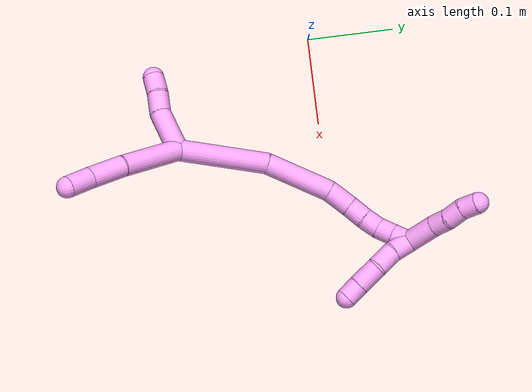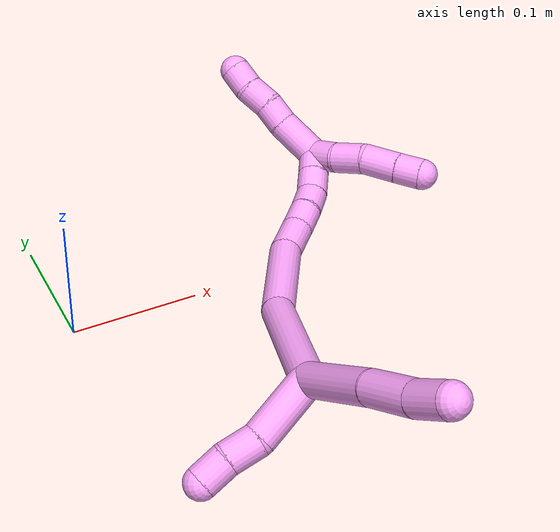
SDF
<sdf version="1.7">
 <world name="default">
  <model name="4">
   <static>0</static>
   <link name="4">
    <collision name="collision-cylinder-e_1_2_8">
     <pose>-0.002715 -0.001063 0.038195 0.027835 -0.070926 -0.000988</pose>
     <geometry><cylinder><radius>0.0125</radius><length>0.076612</length></cylinder></geometry>
     <surface>
      <friction><ode><mu>1.16</mu><mu2>1.16</mu2><slip1>0</slip1><slip2>0</slip2></ode></friction>
      <contact><ode><kp>1e+06</kp><kd>1</kd><max_vel>0</max_vel><min_depth>0.001</min_depth></ode></contact>
     </surface>
    </collision>
    <visual name="visual-cylinder-e_1_2_8">
     <pose>-0.002715 -0.001063 0.038195 0.027835 -0.070926 -0.000988</pose>
     <geometry><cylinder><radius>0.0125</radius><length>0.076612</length></cylinder></geometry>
     <material><ambient>1 0.65098 0.996078 1</ambient></material>
    </visual>
    <collision name="collision-cylinder-e_2_8_9">
     <pose>-0.005023 -0.004532 0.097523 0.113323 0.019102 0.001084</pose>
     <geometry><cylinder><radius>0.0125</radius><length>0.042548</length></cylinder></geometry>
     <surface>
      <friction><ode><mu>1.16</mu><mu2>1.16</mu2><slip1>0</slip1><slip2>0</slip2></ode></friction>
      <contact><ode><kp>1e+06</kp><kd>1</kd><max_vel>0</max_vel><min_depth>0.001</min_depth></ode></contact>
     </surface>
    </collision>
    <visual name="visual-cylinder-e_2_8_9">
     <pose>-0.005023 -0.004532 0.097523 0.113323 0.019102 0.001084</pose>
     <geometry><cylinder><radius>0.0125</radius><length>0.042548</length></cylinder></geometry>
     <material><ambient>1 0.65098 0.996078 1</ambient></material>
    </visual>
    <collision name="collision-cylinder-e_3_9_6">
     <pose>-0.004505 -0.006691 0.134075 -0.015982 0.007254 -5.8e-05</pose>
     <geometry><cylinder><radius>0.0125</radius><length>0.03084</length></cylinder></geometry>
     <surface>
      <friction><ode><mu>1.16</mu><mu2>1.16</mu2><slip1>0</slip1><slip2>0</slip2></ode></friction>
      <contact><ode><kp>1e+06</kp><kd>1</kd><max_vel>0</max_vel><min_depth>0.001</min_depth></ode></contact>
     </surface>
    </collision>
    <visual name="visual-cylinder-e_3_9_6">
     <pose>-0.004505 -0.006691 0.134075 -0.015982 0.007254 -5.8e-05</pose>
     <geometry><cylinder><radius>0.0125</radius><length>0.03084</length></cylinder></geometry>
     <material><ambient>1 0.65098 0.996078 1</ambient></material>
    </visual>
    <collision name="collision-cylinder-e_1_2_10">
     <pose>-0.017936 -0.018524 -0.004928 1.83082 -0.752175 -0.94906</pose>
     <geometry><cylinder><radius>0.0125</radius><length>0.052503</length></cylinder></geometry>
     <surface>
      <friction><ode><mu>1.16</mu><mu2>1.16</mu2><slip1>0</slip1><slip2>0</slip2></ode></friction>
      <contact><ode><kp>1e+06</kp><kd>1</kd><max_vel>0</max_vel><min_depth>0.001</min_depth></ode></contact>
     </surface>
    </collision>
    <visual name="visual-cylinder-e_1_2_10">
     <pose>-0.017936 -0.018524 -0.004928 1.83082 -0.752175 -0.94906</pose>
     <geometry><cylinder><radius>0.0125</radius><length>0.052503</length></cylinder></geometry>
     <material><ambient>1 0.65098 0.996078 1</ambient></material>
    </visual>
    <collision name="collision-cylinder-e_2_10_11">
     <pose>-0.04594 -0.042869 -0.01439 2.23246 -0.93845 -1.60753</pose>
     <geometry><cylinder><radius>0.0125</radius><length>0.024964</length></cylinder></geometry>
     <surface>
      <friction><ode><mu>1.16</mu><mu2>1.16</mu2><slip1>0</slip1><slip2>0</slip2></ode></friction>
      <contact><ode><kp>1e+06</kp><kd>1</kd><max_vel>0</max_vel><min_depth>0.001</min_depth></ode></contact>
     </surface>
    </collision>
    <visual name="visual-cylinder-e_2_10_11">
     <pose>-0.04594 -0.042869 -0.01439 2.23246 -0.93845 -1.60753</pose>
     <geometry><cylinder><radius>0.0125</radius><length>0.024964</length></cylinder></geometry>
     <material><ambient>1 0.65098 0.996078 1</ambient></material>
    </visual>
    <collision name="collision-cylinder-e_3_11_5">
     <pose>-0.063981 -0.05571 -0.022675 2.06163 -0.786205 -1.21044</pose>
     <geometry><cylinder><radius>0.0125</radius><length>0.022534</length></cylinder></geometry>
     <surface>
      <friction><ode><mu>1.16</mu><mu2>1.16</mu2><slip1>0</slip1><slip2>0</slip2></ode></friction>
      <contact><ode><kp>1e+06</kp><kd>1</kd><max_vel>0</max_vel><min_depth>0.001</min_depth></ode></contact>
     </surface>
    </collision>
    <visual name="visual-cylinder-e_3_11_5">
     <pose>-0.063981 -0.05571 -0.022675 2.06163 -0.786205 -1.21044</pose>
     <geometry><cylinder><radius>0.0125</radius><length>0.022534</length></cylinder></geometry>
     <material><ambient>1 0.65098 0.996078 1</ambient></material>
    </visual>
    <collision name="collision-cylinder-e_1_2_12">
     <pose>0.019596 0.021911 -0.044725 -2.68605 0.374865 -1.3715</pose>
     <geometry><cylinder><radius>0.0125</radius><length>0.107042</length></cylinder></geometry>
     <surface>
      <friction><ode><mu>1.16</mu><mu2>1.16</mu2><slip1>0</slip1><slip2>0</slip2></ode></friction>
      <contact><ode><kp>1e+06</kp><kd>1</kd><max_vel>0</max_vel><min_depth>0.001</min_depth></ode></contact>
     </surface>
    </collision>
    <visual name="visual-cylinder-e_1_2_12">
     <pose>0.019596 0.021911 -0.044725 -2.68605 0.374865 -1.3715</pose>
     <geometry><cylinder><radius>0.0125</radius><length>0.107042</length></cylinder></geometry>
     <material><ambient>1 0.65098 0.996078 1</ambient></material>
    </visual>
    <collision name="collision-cylinder-e_2_12_13">
     <pose>0.061172 0.065993 -0.11457 -2.41848 0.580581 -1.33712</pose>
     <geometry><cylinder><radius>0.0125</radius><length>0.08014</length></cylinder></geometry>
     <surface>
      <friction><ode><mu>1.16</mu><mu2>1.16</mu2><slip1>0</slip1><slip2>0</slip2></ode></friction>
      <contact><ode><kp>1e+06</kp><kd>1</kd><max_vel>0</max_vel><min_depth>0.001</min_depth></ode></contact>
     </surface>
    </collision>
    <visual name="visual-cylinder-e_2_12_13">
     <pose>0.061172 0.065993 -0.11457 -2.41848 0.580581 -1.33712</pose>
     <geometry><cylinder><radius>0.0125</radius><length>0.08014</length></cylinder></geometry>
     <material><ambient>1 0.65098 0.996078 1</ambient></material>
    </visual>
    <collision name="collision-cylinder-e_3_13_14">
     <pose>0.093551 0.097177 -0.145932 -2.17652 0.759014 -1.30149</pose>
     <geometry><cylinder><radius>0.0125</radius><length>0.030224</length></cylinder></geometry>
     <surface>
      <friction><ode><mu>1.16</mu><mu2>1.16</mu2><slip1>0</slip1><slip2>0</slip2></ode></friction>
      <contact><ode><kp>1e+06</kp><kd>1</kd><max_vel>0</max_vel><min_depth>0.001</min_depth></ode></contact>
     </surface>
    </collision>
    <visual name="visual-cylinder-e_3_13_14">
     <pose>0.093551 0.097177 -0.145932 -2.17652 0.759014 -1.30149</pose>
     <geometry><cylinder><radius>0.0125</radius><length>0.030224</length></cylinder></geometry>
     <material><ambient>1 0.65098 0.996078 1</ambient></material>
    </visual>
    <collision name="collision-cylinder-e_4_14_15">
     <pose>0.111224 0.113874 -0.155475 -1.97646 0.715824 -1.03265</pose>
     <geometry><cylinder><radius>0.0125</radius><length>0.022165</length></cylinder></geometry>
     <surface>
      <friction><ode><mu>1.16</mu><mu2>1.16</mu2><slip1>0</slip1><slip2>0</slip2></ode></friction>
      <contact><ode><kp>1e+06</kp><kd>1</kd><max_vel>0</max_vel><min_depth>0.001</min_depth></ode></contact>
     </surface>
    </collision>
    <visual name="visual-cylinder-e_4_14_15">
     <pose>0.111224 0.113874 -0.155475 -1.97646 0.715824 -1.03265</pose>
     <geometry><cylinder><radius>0.0125</radius><length>0.022165</length></cylinder></geometry>
     <material><ambient>1 0.65098 0.996078 1</ambient></material>
    </visual>
    <collision name="collision-cylinder-e_5_15_16">
     <pose>0.124867 0.128301 -0.162824 -2.11162 0.680799 -1.11843</pose>
     <geometry><cylinder><radius>0.0125</radius><length>0.020245</length></cylinder></geometry>
     <surface>
      <friction><ode><mu>1.16</mu><mu2>1.16</mu2><slip1>0</slip1><slip2>0</slip2></ode></friction>
      <contact><ode><kp>1e+06</kp><kd>1</kd><max_vel>0</max_vel><min_depth>0.001</min_depth></ode></contact>
     </surface>
    </collision>
    <visual name="visual-cylinder-e_5_15_16">
     <pose>0.124867 0.128301 -0.162824 -2.11162 0.680799 -1.11843</pose>
     <geometry><cylinder><radius>0.0125</radius><length>0.020245</length></cylinder></geometry>
     <material><ambient>1 0.65098 0.996078 1</ambient></material>
    </visual>
    <collision name="collision-cylinder-e_6_16_17">
     <pose>0.13518 0.143554 -0.170456 -1.96916 0.403511 -0.597557</pose>
     <geometry><cylinder><radius>0.0125</radius><length>0.020079</length></cylinder></geometry>
     <surface>
      <friction><ode><mu>1.16</mu><mu2>1.16</mu2><slip1>0</slip1><slip2>0</slip2></ode></friction>
      <contact><ode><kp>1e+06</kp><kd>1</kd><max_vel>0</max_vel><min_depth>0.001</min_depth></ode></contact>
     </surface>
    </collision>
    <visual name="visual-cylinder-e_6_16_17">
     <pose>0.13518 0.143554 -0.170456 -1.96916 0.403511 -0.597557</pose>
     <geometry><cylinder><radius>0.0125</radius><length>0.020079</length></cylinder></geometry>
     <material><ambient>1 0.65098 0.996078 1</ambient></material>
    </visual>
    <collision name="collision-cylinder-e_7_17_1">
     <pose>0.142908 0.160671 -0.177595 -1.96277 0.386121 -0.568846</pose>
     <geometry><cylinder><radius>0.0125</radius><length>0.020106</length></cylinder></geometry>
     <surface>
      <friction><ode><mu>1.16</mu><mu2>1.16</mu2><slip1>0</slip1><slip2>0</slip2></ode></friction>
      <contact><ode><kp>1e+06</kp><kd>1</kd><max_vel>0</max_vel><min_depth>0.001</min_depth></ode></contact>
     </surface>
    </collision>
    <visual name="visual-cylinder-e_7_17_1">
     <pose>0.142908 0.160671 -0.177595 -1.96277 0.386121 -0.568846</pose>
     <geometry><cylinder><radius>0.0125</radius><length>0.020106</length></cylinder></geometry>
     <material><ambient>1 0.65098 0.996078 1</ambient></material>
    </visual>
    <collision name="collision-cylinder-e_1_1_18">
     <pose>0.149394 0.166834 -0.169392 0.204882 0.221076 0.022819</pose>
     <geometry><cylinder><radius>0.0125</radius><length>0.024623</length></cylinder></geometry>
     <surface>
      <friction><ode><mu>1.16</mu><mu2>1.16</mu2><slip1>0</slip1><slip2>0</slip2></ode></friction>
      <contact><ode><kp>1e+06</kp><kd>1</kd><max_vel>0</max_vel><min_depth>0.001</min_depth></ode></contact>
     </surface>
    </collision>
    <visual name="visual-cylinder-e_1_1_18">
     <pose>0.149394 0.166834 -0.169392 0.204882 0.221076 0.022819</pose>
     <geometry><cylinder><radius>0.0125</radius><length>0.024623</length></cylinder></geometry>
     <material><ambient>1 0.65098 0.996078 1</ambient></material>
    </visual>
    <collision name="collision-cylinder-e_2_18_19">
     <pose>0.157719 0.16272 -0.146042 0.143089 0.447816 0.032638</pose>
     <geometry><cylinder><radius>0.0125</radius><length>0.02598</length></cylinder></geometry>
     <surface>
      <friction><ode><mu>1.16</mu><mu2>1.16</mu2><slip1>0</slip1><slip2>0</slip2></ode></friction>
      <contact><ode><kp>1e+06</kp><kd>1</kd><max_vel>0</max_vel><min_depth>0.001</min_depth></ode></contact>
     </surface>
    </collision>
    <visual name="visual-cylinder-e_2_18_19">
     <pose>0.157719 0.16272 -0.146042 0.143089 0.447816 0.032638</pose>
     <geometry><cylinder><radius>0.0125</radius><length>0.02598</length></cylinder></geometry>
     <material><ambient>1 0.65098 0.996078 1</ambient></material>
    </visual>
    <collision name="collision-cylinder-e_3_19_20">
     <pose>0.171162 0.15617 -0.123288 0.41209 0.570537 0.122439</pose>
     <geometry><cylinder><radius>0.0125</radius><length>0.028954</length></cylinder></geometry>
     <surface>
      <friction><ode><mu>1.16</mu><mu2>1.16</mu2><slip1>0</slip1><slip2>0</slip2></ode></friction>
      <contact><ode><kp>1e+06</kp><kd>1</kd><max_vel>0</max_vel><min_depth>0.001</min_depth></ode></contact>
     </surface>
    </collision>
    <visual name="visual-cylinder-e_3_19_20">
     <pose>0.171162 0.15617 -0.123288 0.41209 0.570537 0.122439</pose>
     <geometry><cylinder><radius>0.0125</radius><length>0.028954</length></cylinder></geometry>
     <material><ambient>1 0.65098 0.996078 1</ambient></material>
    </visual>
    <collision name="collision-cylinder-e_4_20_4">
     <pose>0.184687 0.148029 -0.104296 0.394731 0.592265 0.121871</pose>
     <geometry><cylinder><radius>0.0125</radius><length>0.020442</length></cylinder></geometry>
     <surface>
      <friction><ode><mu>1.16</mu><mu2>1.16</mu2><slip1>0</slip1><slip2>0</slip2></ode></friction>
      <contact><ode><kp>1e+06</kp><kd>1</kd><max_vel>0</max_vel><min_depth>0.001</min_depth></ode></contact>
     </surface>
    </collision>
    <visual name="visual-cylinder-e_4_20_4">
     <pose>0.184687 0.148029 -0.104296 0.394731 0.592265 0.121871</pose>
     <geometry><cylinder><radius>0.0125</radius><length>0.020442</length></cylinder></geometry>
     <material><ambient>1 0.65098 0.996078 1</ambient></material>
    </visual>
    <collision name="collision-cylinder-e_1_1_21">
     <pose>0.137402 0.183098 -0.189958 -2.13807 -0.515821 0.89641</pose>
     <geometry><cylinder><radius>0.0125</radius><length>0.037677</length></cylinder></geometry>
     <surface>
      <friction><ode><mu>1.16</mu><mu2>1.16</mu2><slip1>0</slip1><slip2>0</slip2></ode></friction>
      <contact><ode><kp>1e+06</kp><kd>1</kd><max_vel>0</max_vel><min_depth>0.001</min_depth></ode></contact>
     </surface>
    </collision>
    <visual name="visual-cylinder-e_1_1_21">
     <pose>0.137402 0.183098 -0.189958 -2.13807 -0.515821 0.89641</pose>
     <geometry><cylinder><radius>0.0125</radius><length>0.037677</length></cylinder></geometry>
     <material><ambient>1 0.65098 0.996078 1</ambient></material>
    </visual>
    <collision name="collision-cylinder-e_2_21_22">
     <pose>0.123799 0.205345 -0.202416 -1.97979 -0.438952 0.655133</pose>
     <geometry><cylinder><radius>0.0125</radius><length>0.020292</length></cylinder></geometry>
     <surface>
      <friction><ode><mu>1.16</mu><mu2>1.16</mu2><slip1>0</slip1><slip2>0</slip2></ode></friction>
      <contact><ode><kp>1e+06</kp><kd>1</kd><max_vel>0</max_vel><min_depth>0.001</min_depth></ode></contact>
     </surface>
    </collision>
    <visual name="visual-cylinder-e_2_21_22">
     <pose>0.123799 0.205345 -0.202416 -1.97979 -0.438952 0.655133</pose>
     <geometry><cylinder><radius>0.0125</radius><length>0.020292</length></cylinder></geometry>
     <material><ambient>1 0.65098 0.996078 1</ambient></material>
    </visual>
    <collision name="collision-cylinder-e_3_22_23">
     <pose>0.113543 0.221313 -0.211263 -2.17399 -0.575751 1.02632</pose>
     <geometry><cylinder><radius>0.0125</radius><length>0.021834</length></cylinder></geometry>
     <surface>
      <friction><ode><mu>1.16</mu><mu2>1.16</mu2><slip1>0</slip1><slip2>0</slip2></ode></friction>
      <contact><ode><kp>1e+06</kp><kd>1</kd><max_vel>0</max_vel><min_depth>0.001</min_depth></ode></contact>
     </surface>
    </collision>
    <visual name="visual-cylinder-e_3_22_23">
     <pose>0.113543 0.221313 -0.211263 -2.17399 -0.575751 1.02632</pose>
     <geometry><cylinder><radius>0.0125</radius><length>0.021834</length></cylinder></geometry>
     <material><ambient>1 0.65098 0.996078 1</ambient></material>
    </visual>
    <collision name="collision-cylinder-e_4_23_3">
     <pose>0.104278 0.237178 -0.221112 -2.08067 -0.335076 0.561455</pose>
     <geometry><cylinder><radius>0.0125</radius><length>0.020198</length></cylinder></geometry>
     <surface>
      <friction><ode><mu>1.16</mu><mu2>1.16</mu2><slip1>0</slip1><slip2>0</slip2></ode></friction>
      <contact><ode><kp>1e+06</kp><kd>1</kd><max_vel>0</max_vel><min_depth>0.001</min_depth></ode></contact>
     </surface>
    </collision>
    <visual name="visual-cylinder-e_4_23_3">
     <pose>0.104278 0.237178 -0.221112 -2.08067 -0.335076 0.561455</pose>
     <geometry><cylinder><radius>0.0125</radius><length>0.020198</length></cylinder></geometry>
     <material><ambient>1 0.65098 0.996078 1</ambient></material>
    </visual>
    <collision name="collision-sphere-3">
     <pose>0.100957 0.245502 -0.225767 0 -0 0</pose>
     <geometry><sphere><radius>0.0125</radius></sphere></geometry>
     <surface>
      <friction><ode><mu>1.16</mu><mu2>1.16</mu2><slip1>0</slip1><slip2>0</slip2></ode></friction>
      <contact><ode><kp>1e+06</kp><kd>1</kd><max_vel>0</max_vel><min_depth>0.001</min_depth></ode></contact>
     </surface>
    </collision>
    <visual name="visual-sphere-3">
     <pose>0.100957 0.245502 -0.225767 0 -0 0</pose>
     <geometry><sphere><radius>0.0125</radius></sphere></geometry>
     <material><ambient>1 0.65098 0.996078 1</ambient></material>
    </visual>
    <collision name="collision-sphere-23">
     <pose>0.107599 0.228854 -0.216457 0 -0 0</pose>
     <geometry><sphere><radius>0.0125</radius></sphere></geometry>
     <surface>
      <friction><ode><mu>1.16</mu><mu2>1.16</mu2><slip1>0</slip1><slip2>0</slip2></ode></friction>
      <contact><ode><kp>1e+06</kp><kd>1</kd><max_vel>0</max_vel><min_depth>0.001</min_depth></ode></contact>
     </surface>
    </collision>
    <visual name="visual-sphere-23">
     <pose>0.107599 0.228854 -0.216457 0 -0 0</pose>
     <geometry><sphere><radius>0.0125</radius></sphere></geometry>
     <material><ambient>1 0.65098 0.996078 1</ambient></material>
    </visual>
    <collision name="collision-sphere-22">
     <pose>0.119487 0.213772 -0.206068 0 -0 0</pose>
     <geometry><sphere><radius>0.0125</radius></sphere></geometry>
     <surface>
      <friction><ode><mu>1.16</mu><mu2>1.16</mu2><slip1>0</slip1><slip2>0</slip2></ode></friction>
      <contact><ode><kp>1e+06</kp><kd>1</kd><max_vel>0</max_vel><min_depth>0.001</min_depth></ode></contact>
     </surface>
    </collision>
    <visual name="visual-sphere-22">
     <pose>0.119487 0.213772 -0.206068 0 -0 0</pose>
     <geometry><sphere><radius>0.0125</radius></sphere></geometry>
     <material><ambient>1 0.65098 0.996078 1</ambient></material>
    </visual>
    <collision name="collision-sphere-21">
     <pose>0.128111 0.196918 -0.198764 0 -0 0</pose>
     <geometry><sphere><radius>0.0125</radius></sphere></geometry>
     <surface>
      <friction><ode><mu>1.16</mu><mu2>1.16</mu2><slip1>0</slip1><slip2>0</slip2></ode></friction>
      <contact><ode><kp>1e+06</kp><kd>1</kd><max_vel>0</max_vel><min_depth>0.001</min_depth></ode></contact>
     </surface>
    </collision>
    <visual name="visual-sphere-21">
     <pose>0.128111 0.196918 -0.198764 0 -0 0</pose>
     <geometry><sphere><radius>0.0125</radius></sphere></geometry>
     <material><ambient>1 0.65098 0.996078 1</ambient></material>
    </visual>
    <collision name="collision-sphere-4">
     <pose>0.190393 0.144768 -0.096468 0 -0 0</pose>
     <geometry><sphere><radius>0.0125</radius></sphere></geometry>
     <surface>
      <friction><ode><mu>1.16</mu><mu2>1.16</mu2><slip1>0</slip1><slip2>0</slip2></ode></friction>
      <contact><ode><kp>1e+06</kp><kd>1</kd><max_vel>0</max_vel><min_depth>0.001</min_depth></ode></contact>
     </surface>
    </collision>
    <visual name="visual-sphere-4">
     <pose>0.190393 0.144768 -0.096468 0 -0 0</pose>
     <geometry><sphere><radius>0.0125</radius></sphere></geometry>
     <material><ambient>1 0.65098 0.996078 1</ambient></material>
    </visual>
    <collision name="collision-sphere-20">
     <pose>0.178981 0.15129 -0.112124 0 -0 0</pose>
     <geometry><sphere><radius>0.0125</radius></sphere></geometry>
     <surface>
      <friction><ode><mu>1.16</mu><mu2>1.16</mu2><slip1>0</slip1><slip2>0</slip2></ode></friction>
      <contact><ode><kp>1e+06</kp><kd>1</kd><max_vel>0</max_vel><min_depth>0.001</min_depth></ode></contact>
     </surface>
    </collision>
    <visual name="visual-sphere-20">
     <pose>0.178981 0.15129 -0.112124 0 -0 0</pose>
     <geometry><sphere><radius>0.0125</radius></sphere></geometry>
     <material><ambient>1 0.65098 0.996078 1</ambient></material>
    </visual>
    <collision name="collision-sphere-11">
     <pose>-0.056008 -0.04869 -0.018922 0 -0 0</pose>
     <geometry><sphere><radius>0.0125</radius></sphere></geometry>
     <surface>
      <friction><ode><mu>1.16</mu><mu2>1.16</mu2><slip1>0</slip1><slip2>0</slip2></ode></friction>
      <contact><ode><kp>1e+06</kp><kd>1</kd><max_vel>0</max_vel><min_depth>0.001</min_depth></ode></contact>
     </surface>
    </collision>
    <visual name="visual-sphere-11">
     <pose>-0.056008 -0.04869 -0.018922 0 -0 0</pose>
     <geometry><sphere><radius>0.0125</radius></sphere></geometry>
     <material><ambient>1 0.65098 0.996078 1</ambient></material>
    </visual>
    <collision name="collision-sphere-10">
     <pose>-0.035871 -0.037049 -0.009857 0 -0 0</pose>
     <geometry><sphere><radius>0.0125</radius></sphere></geometry>
     <surface>
      <friction><ode><mu>1.16</mu><mu2>1.16</mu2><slip1>0</slip1><slip2>0</slip2></ode></friction>
      <contact><ode><kp>1e+06</kp><kd>1</kd><max_vel>0</max_vel><min_depth>0.001</min_depth></ode></contact>
     </surface>
    </collision>
    <visual name="visual-sphere-10">
     <pose>-0.035871 -0.037049 -0.009857 0 -0 0</pose>
     <geometry><sphere><radius>0.0125</radius></sphere></geometry>
     <material><ambient>1 0.65098 0.996078 1</ambient></material>
    </visual>
    <collision name="collision-sphere-6">
     <pose>-0.004393 -0.006444 0.149492 0 -0 0</pose>
     <geometry><sphere><radius>0.0125</radius></sphere></geometry>
     <surface>
      <friction><ode><mu>1.16</mu><mu2>1.16</mu2><slip1>0</slip1><slip2>0</slip2></ode></friction>
      <contact><ode><kp>1e+06</kp><kd>1</kd><max_vel>0</max_vel><min_depth>0.001</min_depth></ode></contact>
     </surface>
    </collision>
    <visual name="visual-sphere-6">
     <pose>-0.004393 -0.006444 0.149492 0 -0 0</pose>
     <geometry><sphere><radius>0.0125</radius></sphere></geometry>
     <material><ambient>1 0.65098 0.996078 1</ambient></material>
    </visual>
    <collision name="collision-sphere-9">
     <pose>-0.004617 -0.006937 0.118657 0 -0 0</pose>
     <geometry><sphere><radius>0.0125</radius></sphere></geometry>
     <surface>
      <friction><ode><mu>1.16</mu><mu2>1.16</mu2><slip1>0</slip1><slip2>0</slip2></ode></friction>
      <contact><ode><kp>1e+06</kp><kd>1</kd><max_vel>0</max_vel><min_depth>0.001</min_depth></ode></contact>
     </surface>
    </collision>
    <visual name="visual-sphere-9">
     <pose>-0.004617 -0.006937 0.118657 0 -0 0</pose>
     <geometry><sphere><radius>0.0125</radius></sphere></geometry>
     <material><ambient>1 0.65098 0.996078 1</ambient></material>
    </visual>
    <collision name="collision-sphere-2">
     <geometry><sphere><radius>0.0125</radius></sphere></geometry>
     <surface>
      <friction><ode><mu>1.16</mu><mu2>1.16</mu2><slip1>0</slip1><slip2>0</slip2></ode></friction>
      <contact><ode><kp>1e+06</kp><kd>1</kd><max_vel>0</max_vel><min_depth>0.001</min_depth></ode></contact>
     </surface>
    </collision>
    <visual name="visual-sphere-2">
     <geometry><sphere><radius>0.0125</radius></sphere></geometry>
     <material><ambient>1 0.65098 0.996078 1</ambient></material>
    </visual>
    <collision name="collision-sphere-19">
     <pose>0.163343 0.16105 -0.134452 0 -0 0</pose>
     <geometry><sphere><radius>0.0125</radius></sphere></geometry>
     <surface>
      <friction><ode><mu>1.16</mu><mu2>1.16</mu2><slip1>0</slip1><slip2>0</slip2></ode></friction>
      <contact><ode><kp>1e+06</kp><kd>1</kd><max_vel>0</max_vel><min_depth>0.001</min_depth></ode></contact>
     </surface>
    </collision>
    <visual name="visual-sphere-19">
     <pose>0.163343 0.16105 -0.134452 0 -0 0</pose>
     <geometry><sphere><radius>0.0125</radius></sphere></geometry>
     <material><ambient>1 0.65098 0.996078 1</ambient></material>
    </visual>
    <collision name="collision-sphere-8">
     <pose>-0.005429 -0.002127 0.07639 0 -0 0</pose>
     <geometry><sphere><radius>0.0125</radius></sphere></geometry>
     <surface>
      <friction><ode><mu>1.16</mu><mu2>1.16</mu2><slip1>0</slip1><slip2>0</slip2></ode></friction>
      <contact><ode><kp>1e+06</kp><kd>1</kd><max_vel>0</max_vel><min_depth>0.001</min_depth></ode></contact>
     </surface>
    </collision>
    <visual name="visual-sphere-8">
     <pose>-0.005429 -0.002127 0.07639 0 -0 0</pose>
     <geometry><sphere><radius>0.0125</radius></sphere></geometry>
     <material><ambient>1 0.65098 0.996078 1</ambient></material>
    </visual>
    <collision name="collision-sphere-5">
     <pose>-0.071955 -0.062731 -0.026427 0 -0 0</pose>
     <geometry><sphere><radius>0.0125</radius></sphere></geometry>
     <surface>
      <friction><ode><mu>1.16</mu><mu2>1.16</mu2><slip1>0</slip1><slip2>0</slip2></ode></friction>
      <contact><ode><kp>1e+06</kp><kd>1</kd><max_vel>0</max_vel><min_depth>0.001</min_depth></ode></contact>
     </surface>
    </collision>
    <visual name="visual-sphere-5">
     <pose>-0.071955 -0.062731 -0.026427 0 -0 0</pose>
     <geometry><sphere><radius>0.0125</radius></sphere></geometry>
     <material><ambient>1 0.65098 0.996078 1</ambient></material>
    </visual>
    <collision name="collision-sphere-12">
     <pose>0.039193 0.043823 -0.08945 0 -0 0</pose>
     <geometry><sphere><radius>0.0125</radius></sphere></geometry>
     <surface>
      <friction><ode><mu>1.16</mu><mu2>1.16</mu2><slip1>0</slip1><slip2>0</slip2></ode></friction>
      <contact><ode><kp>1e+06</kp><kd>1</kd><max_vel>0</max_vel><min_depth>0.001</min_depth></ode></contact>
     </surface>
    </collision>
    <visual name="visual-sphere-12">
     <pose>0.039193 0.043823 -0.08945 0 -0 0</pose>
     <geometry><sphere><radius>0.0125</radius></sphere></geometry>
     <material><ambient>1 0.65098 0.996078 1</ambient></material>
    </visual>
    <collision name="collision-sphere-13">
     <pose>0.08315 0.088164 -0.13969 0 -0 0</pose>
     <geometry><sphere><radius>0.0125</radius></sphere></geometry>
     <surface>
      <friction><ode><mu>1.16</mu><mu2>1.16</mu2><slip1>0</slip1><slip2>0</slip2></ode></friction>
      <contact><ode><kp>1e+06</kp><kd>1</kd><max_vel>0</max_vel><min_depth>0.001</min_depth></ode></contact>
     </surface>
    </collision>
    <visual name="visual-sphere-13">
     <pose>0.08315 0.088164 -0.13969 0 -0 0</pose>
     <geometry><sphere><radius>0.0125</radius></sphere></geometry>
     <material><ambient>1 0.65098 0.996078 1</ambient></material>
    </visual>
    <collision name="collision-sphere-14">
     <pose>0.103951 0.10619 -0.152175 0 -0 0</pose>
     <geometry><sphere><radius>0.0125</radius></sphere></geometry>
     <surface>
      <friction><ode><mu>1.16</mu><mu2>1.16</mu2><slip1>0</slip1><slip2>0</slip2></ode></friction>
      <contact><ode><kp>1e+06</kp><kd>1</kd><max_vel>0</max_vel><min_depth>0.001</min_depth></ode></contact>
     </surface>
    </collision>
    <visual name="visual-sphere-14">
     <pose>0.103951 0.10619 -0.152175 0 -0 0</pose>
     <geometry><sphere><radius>0.0125</radius></sphere></geometry>
     <material><ambient>1 0.65098 0.996078 1</ambient></material>
    </visual>
    <collision name="collision-sphere-15">
     <pose>0.118496 0.121558 -0.158775 0 -0 0</pose>
     <geometry><sphere><radius>0.0125</radius></sphere></geometry>
     <surface>
      <friction><ode><mu>1.16</mu><mu2>1.16</mu2><slip1>0</slip1><slip2>0</slip2></ode></friction>
      <contact><ode><kp>1e+06</kp><kd>1</kd><max_vel>0</max_vel><min_depth>0.001</min_depth></ode></contact>
     </surface>
    </collision>
    <visual name="visual-sphere-15">
     <pose>0.118496 0.121558 -0.158775 0 -0 0</pose>
     <geometry><sphere><radius>0.0125</radius></sphere></geometry>
     <material><ambient>1 0.65098 0.996078 1</ambient></material>
    </visual>
    <collision name="collision-sphere-16">
     <pose>0.131238 0.135044 -0.166874 0 -0 0</pose>
     <geometry><sphere><radius>0.0125</radius></sphere></geometry>
     <surface>
      <friction><ode><mu>1.16</mu><mu2>1.16</mu2><slip1>0</slip1><slip2>0</slip2></ode></friction>
      <contact><ode><kp>1e+06</kp><kd>1</kd><max_vel>0</max_vel><min_depth>0.001</min_depth></ode></contact>
     </surface>
    </collision>
    <visual name="visual-sphere-16">
     <pose>0.131238 0.135044 -0.166874 0 -0 0</pose>
     <geometry><sphere><radius>0.0125</radius></sphere></geometry>
     <material><ambient>1 0.65098 0.996078 1</ambient></material>
    </visual>
    <collision name="collision-sphere-17">
     <pose>0.139122 0.152064 -0.174037 0 -0 0</pose>
     <geometry><sphere><radius>0.0125</radius></sphere></geometry>
     <surface>
      <friction><ode><mu>1.16</mu><mu2>1.16</mu2><slip1>0</slip1><slip2>0</slip2></ode></friction>
      <contact><ode><kp>1e+06</kp><kd>1</kd><max_vel>0</max_vel><min_depth>0.001</min_depth></ode></contact>
     </surface>
    </collision>
    <visual name="visual-sphere-17">
     <pose>0.139122 0.152064 -0.174037 0 -0 0</pose>
     <geometry><sphere><radius>0.0125</radius></sphere></geometry>
     <material><ambient>1 0.65098 0.996078 1</ambient></material>
    </visual>
    <collision name="collision-sphere-1">
     <pose>0.146694 0.169278 -0.181153 0 -0 0</pose>
     <geometry><sphere><radius>0.0125</radius></sphere></geometry>
     <surface>
      <friction><ode><mu>1.16</mu><mu2>1.16</mu2><slip1>0</slip1><slip2>0</slip2></ode></friction>
      <contact><ode><kp>1e+06</kp><kd>1</kd><max_vel>0</max_vel><min_depth>0.001</min_depth></ode></contact>
     </surface>
    </collision>
    <visual name="visual-sphere-1">
     <pose>0.146694 0.169278 -0.181153 0 -0 0</pose>
     <geometry><sphere><radius>0.0125</radius></sphere></geometry>
     <material><ambient>1 0.65098 0.996078 1</ambient></material>
    </visual>
    <collision name="collision-sphere-18">
     <pose>0.152094 0.16439 -0.157631 0 -0 0</pose>
     <geometry><sphere><radius>0.0125</radius></sphere></geometry>
     <surface>
      <friction><ode><mu>1.16</mu><mu2>1.16</mu2><slip1>0</slip1><slip2>0</slip2></ode></friction>
      <contact><ode><kp>1e+06</kp><kd>1</kd><max_vel>0</max_vel><min_depth>0.001</min_depth></ode></contact>
     </surface>
    </collision>
    <visual name="visual-sphere-18">
     <pose>0.152094 0.16439 -0.157631 0 -0 0</pose>
     <geometry><sphere><radius>0.0125</radius></sphere></geometry>
     <material><ambient>1 0.65098 0.996078 1</ambient></material>
    </visual>
    <inertial>
     <pose>0.060132 0.072797 -0.074725 0 -0 0</pose>
     <mass>0.75</mass>
     <inertia>
      <ixx>-3.3e-05</ixx>
      <ixy>0</ixy>
      <ixz>0</ixz>
      <iyy>-5.6e-05</iyy>
      <iyz>0</iyz>
      <izz>-0.000122</izz>
     </inertia>
    </inertial>
   </link>
   <pose>0.110249 -0.165249 0.052897 0.926847 0.315661 0.038515</pose>
  </model>
 </world>
</sdf>
